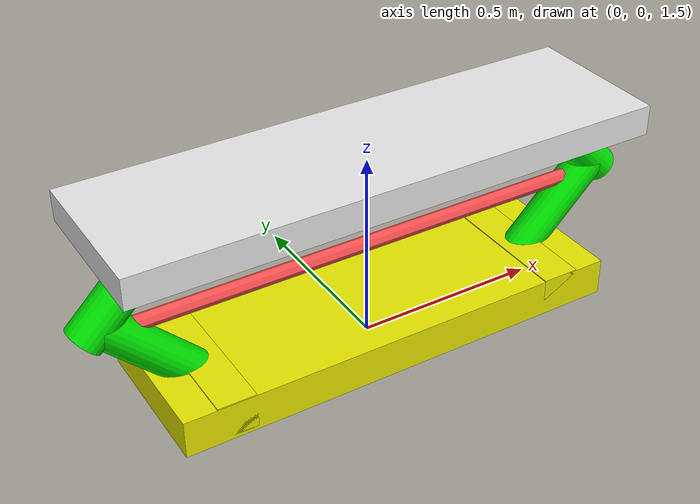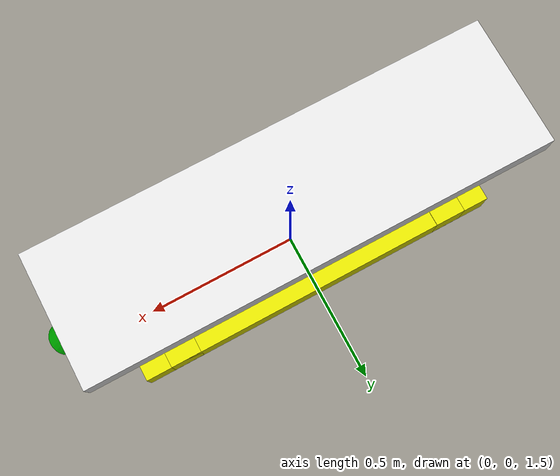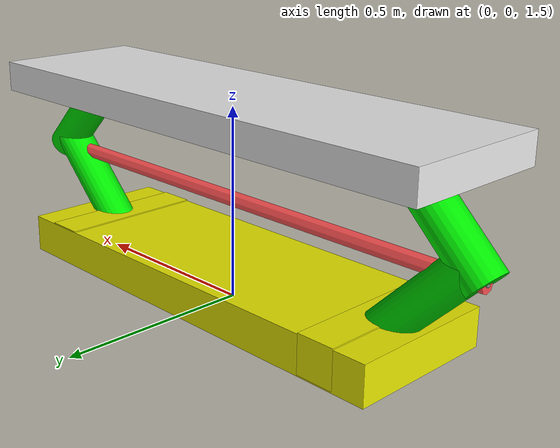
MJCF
<mujoco>
	<!-- 根据dsh提供的参数建模 -->
	<option timestep="0.0001" integrator="RK4" gravity="0 0 -10" o_friction="0 0 0">
		<flag sensornoise="enable" contact="enable" energy="enable" />
	</option>

	<statistic center="0 0 0.55" extent="1.1" />

	<visual>
		<headlight diffuse="0.6 0.6 0.6" ambient="0.3 0.3 0.3" specular="0 0 0" />
		<rgba haze="0.15 0.25 0.35 1" />
		<global azimuth="150" elevation="-20" />
	</visual>

	<worldbody>
		<light diffuse=".5 .5 .5" pos="0 0 3" dir="0 0 -1" />

		<body name="hopper" pos="0 0 2">
			<!-- 约束跳跃机器人只在x和z方向自由 -->
			<freejoint/>
			<geom type="box" size=".7 .2 .04" rgba=".9 .9 .9 1" mass="0.5" />
			<site name="imu" size="0.01" pos="0 0 0" />
			<body name="thigh_left" pos="-0.6179 0 -0.1179" euler="0 45 0">
				<joint name="hip_left" type="hinge" pos="0 0 0.1667" axis="0 -1 0" range="-45 90" limited="true"/>
				<geom type="cylinder" size=".05 .1667" rgba="0 .9 0 1" mass="0.5"/>
				<site name="s_left" pos="0 0 -0.1667" />
				<body name="leg_left" pos="0.1667 0 -0.1179" euler="0 -90 0">
					<joint name="knee_left" type="hinge" pos="0 0 0.1667" axis="0 -1 0" />
					<geom type="cylinder" size=".05 .1667" rgba="0 .9 0 1" mass="0.5"/>
					<body name="foot_left"  pos="0 0 -0.1667" euler="0 -45 0">
						<joint name="ankle_left" type="hinge" pos="0 0 0" axis="0 -1 0" />
						<geom type="box" size=".05 .2 .05" rgba=".9 .9 .0 1" mass="0.2"/>
					</body>
				</body>
			</body>
			<body name="thigh_right" pos="0.6179 0 -0.1179" euler="0 -45 0">
				<joint name="hip_right" type="hinge" pos="0 0 0.1667" axis="0 -1 0" range="-90 45" limited="true"/>
				<geom type="cylinder" size=".05 .1667" rgba="0 .9 0 1" mass="0.5"/>
				<site name="s_right" pos="0 0 -0.1667" />
				<body name="leg_right" pos="-0.1667 0 -0.1179" euler="0 90 0">
					<joint name="knee_right" type="hinge" pos="0 0 0.1667" axis="0 -1 0"/>
					<geom type="cylinder" size=".05 .1667" rgba="0 .9 0 1" mass="0.5"/>
					<body name="foot_right"  pos="0 0 -0.1667" euler="0 45 0">
						<joint name="ankle_right" type="hinge" pos="0 0 0" axis="0 -1 0" />
						<geom type="box" size=".05 .2 .05" rgba=".9 .9 .0 1" mass="0.2"/>
					</body>
				</body>
			</body>
		</body>
		<body name="foot_middle" pos="0 0 1.56">
			<freejoint />
			<geom type="box" size=".6 .2 .05" rgba=".9 .9 .0 1" mass="0.5" />
			<site name="foot_ground" pos="0 0 -0.055" />
		</body>
	</worldbody>

	<contact>
		<exclude name="e0" body1="hopper" body2="thigh_left" />
		<exclude name="e1" body1="hopper" body2="thigh_right" />
		<exclude name="e2" body1="thigh_left" body2="leg_left" />
		<exclude name="e3" body1="thigh_right" body2="leg_right" />
		<exclude name="e4" body1="leg_left" body2="foot_middle" />
		<exclude name="e5" body1="leg_right" body2="foot_middle" />
		<exclude name="e6" body1="foot_left" body2="foot_middle" />
		<exclude name="e7" body1="foot_right" body2="foot_middle" />
	</contact>

	<equality>
		<weld name="c1" body1="foot_left" body2="foot_middle"/>
		<weld name="c2" body1="foot_right" body2="foot_middle" />
	</equality>

	<tendon>
		<spatial name='tendon1' range="0.1 10" limited="true" width=".02" rgba=".95 .3 .3 1"
			stiffness="50" springlength="0.25">
			<site site="s_left" />
			<site site="s_right" />
		</spatial>
	</tendon>

	<actuator>
		<position name="pservo_hip_left" joint="hip_left" kp="0"/>
		<velocity name="vservo_hip_left" joint="hip_left" kv="0"/>
		<position name="pservo_hip_right" joint="hip_right" kp="0"/>
		<velocity name="vservo_hip_right" joint="hip_right" kv="0"/>

	</actuator>

	<sensor>
		<jointpos name="hip_pos_sensor" joint="hip_left" noise="0" />
		<jointvel name="hip_vel_sensor" joint="hip_left" noise="0" />
		<accelerometer name="acceleration_sensor" site="imu"/>
		<velocimeter  name="velocity_sensor" site="imu"/>
		<force name="ground_force_sensor" site="foot_ground"/>
	</sensor>

	<keyframe>
		<!-- 不设定时间默认每次都重新为0，所以只能用来做初始状态或者做动画，不能用于做仿真 -->
	</keyframe>
</mujoco>
